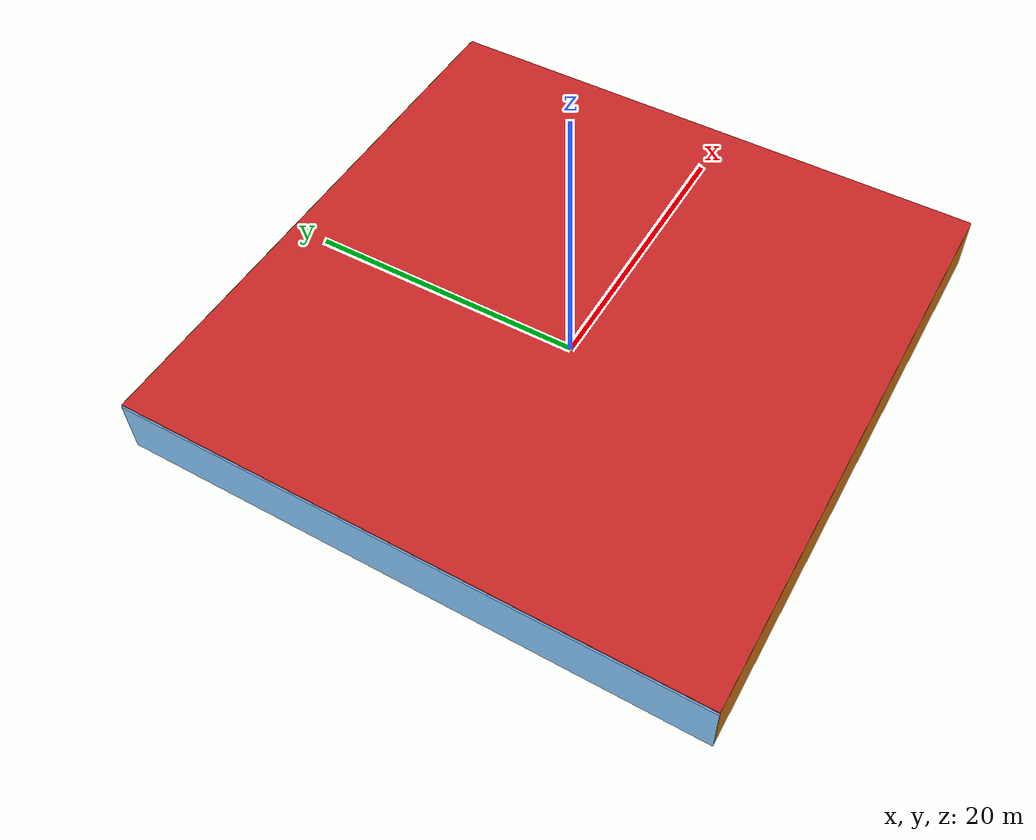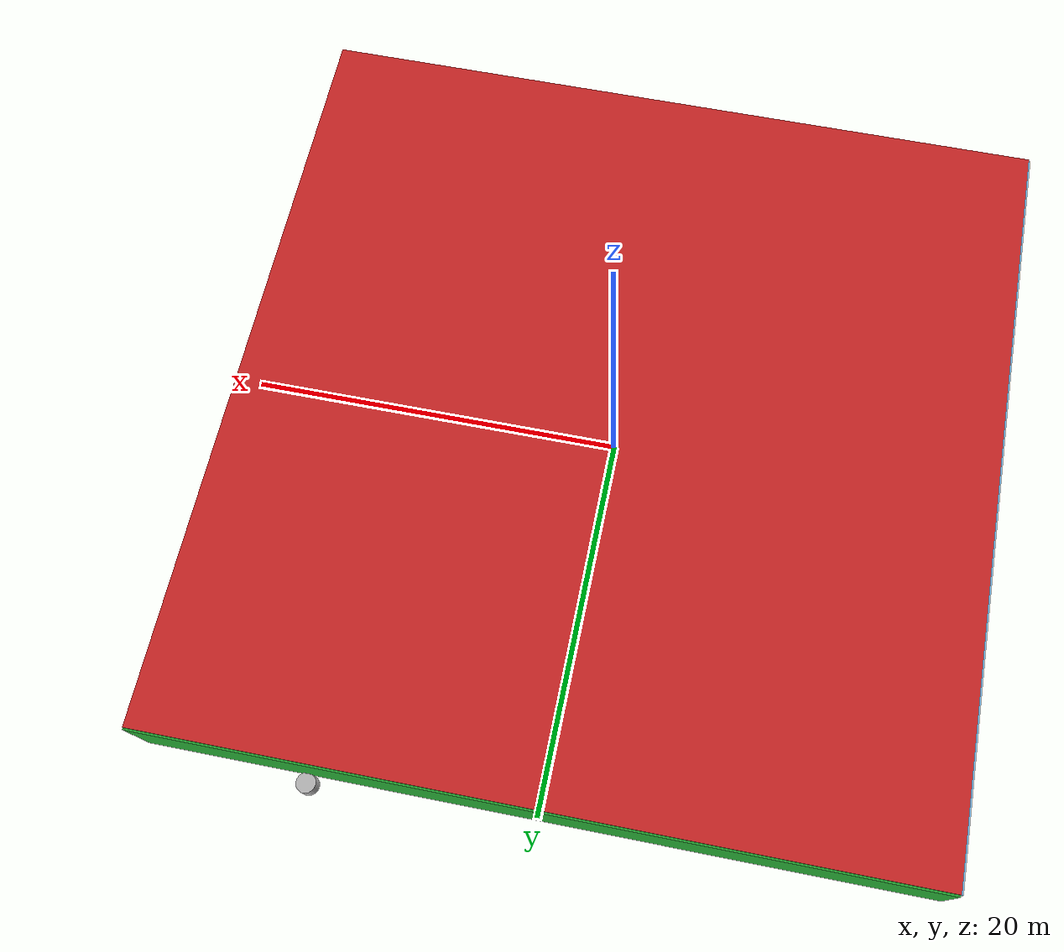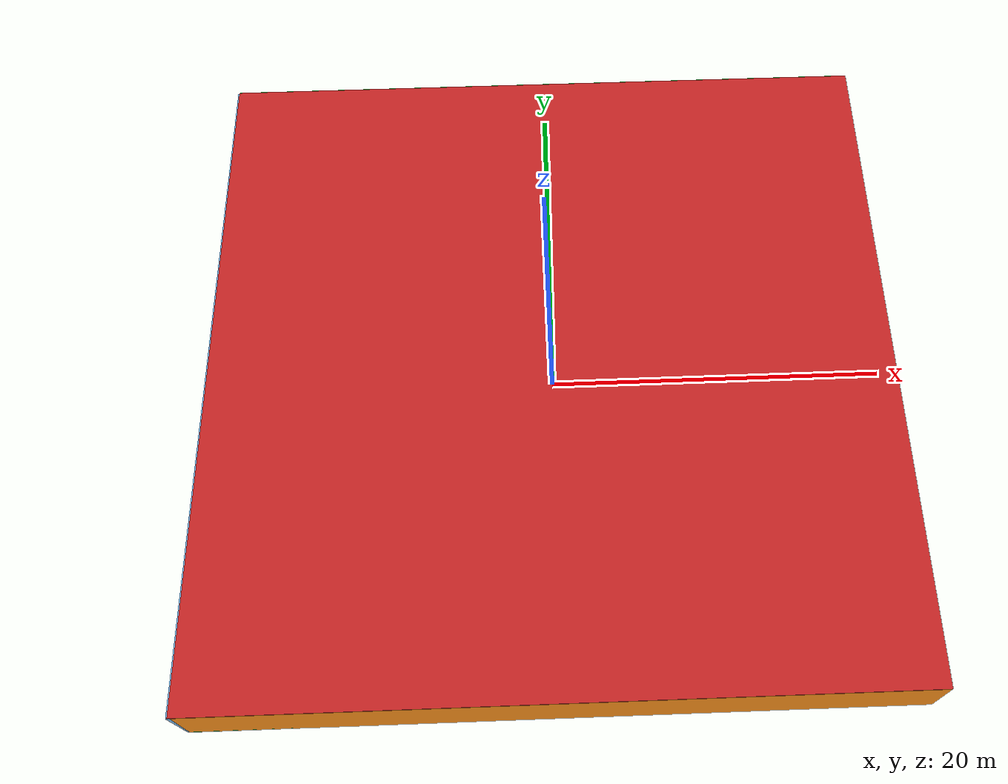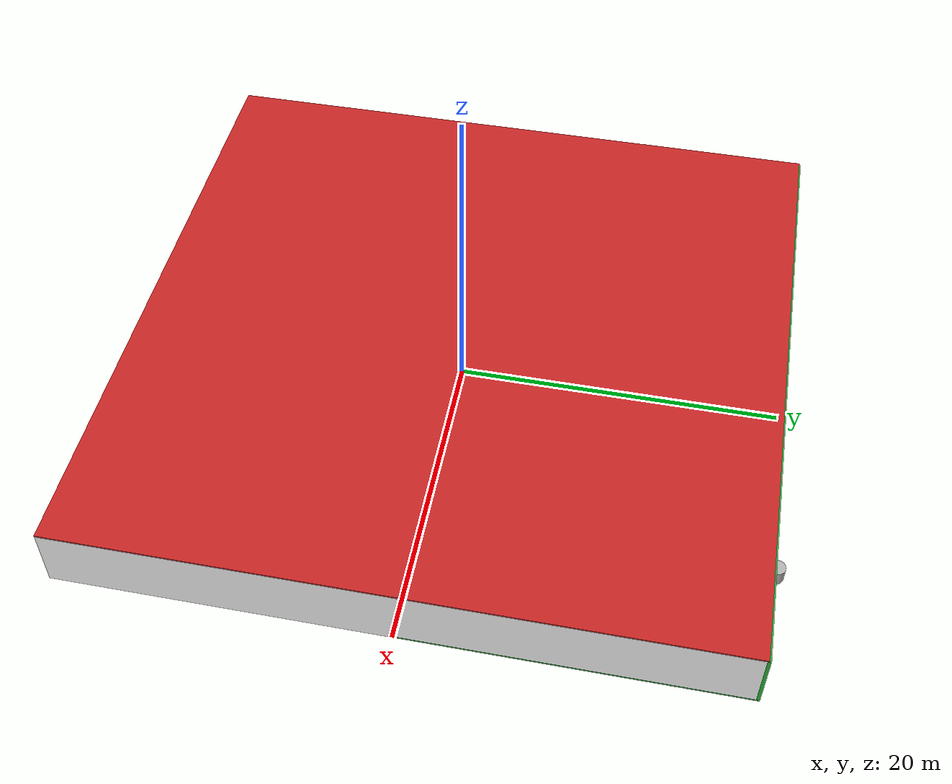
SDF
<sdf version="1.4">
 <world name="default">
  <physics type="ode">
   <max_step_size>0.001</max_step_size>
   <real_time_factor>1</real_time_factor>
   <real_time_update_rate>1000</real_time_update_rate>
   <gravity>0 0 -9.8</gravity>
  </physics>
  <scene><ambient>0.4 0.4 0.4 1</ambient><background>0.7 0.7 0.7 1</background><shadows>1</shadows></scene>
  <model name="Surrounding">
   <static>1</static>
   <link name="Ceiling">
    <collision name="Ceiling_Collision"><geometry><box><size>40 40 0.1</size></box></geometry></collision>
    <visual name="Ceiling_Visual">
     <geometry><box><size>40 40 0.1</size></box></geometry>
     <material>
      <script><uri>file://media/materials/scripts/gazebo.material</uri><name>Gazebo/Red</name></script>
     </material>
    </visual>
    <pose>0 0 4.05 0 0 0</pose>
   </link>
   <link name="Wall_South">
    <collision name="Wall_South_Collision">
     <geometry><box><size>40 0 4</size></box></geometry>
     <pose>0 0 2 0 -0 0</pose>
    </collision>
    <visual name="Wall_South_Visual">
     <pose>0 0 2 0 -0 0</pose>
     <geometry><box><size>40 0 4</size></box></geometry>
     <material>
      <script><uri>file://media/materials/scripts/gazebo.material</uri><name>Gazebo/Orange</name></script>
     </material>
    </visual>
    <velocity_decay><linear>0</linear><angular>0</angular></velocity_decay>
    <pose>0 -20 0 0 -0 0</pose>
   </link>
   <link name="Wall_East">
    <collision name="Wall_21_Collision">
     <geometry><box><size>40 0 4</size></box></geometry>
     <pose>0 0 2 0 -0 0</pose>
    </collision>
    <visual name="Wall_21_Visual">
     <pose>0 0 2 0 -0 0</pose>
     <geometry><box><size>40 0 4</size></box></geometry>
     <material>
      <script><uri>file://media/materials/scripts/gazebo.material</uri><name>Gazebo/WhiteGlow</name></script>
     </material>
    </visual>
    <velocity_decay><linear>0</linear><angular>0</angular></velocity_decay>
    <pose>20 0 0 0 -0 1.5708</pose>
   </link>
   <link name="Wall_North">
    <collision name="Wall_22_Collision">
     <geometry><box><size>40 0.2 4</size></box></geometry>
     <pose>0 0 2 0 -0 0</pose>
    </collision>
    <visual name="Wall_22_Visual">
     <pose>0 0 2 0 -0 0</pose>
     <geometry><box><size>40 0.2 4</size></box></geometry>
     <material>
      <script><uri>file://media/materials/scripts/gazebo.material</uri><name>Gazebo/Green</name></script>
     </material>
    </visual>
    <velocity_decay><linear>0</linear><angular>0</angular></velocity_decay>
    <pose>0 20 0 0 -0 0</pose>
   </link>
   <link name="Wall_West">
    <collision name="Wall_23_Collision">
     <geometry><box><size>40 0.2 4</size></box></geometry>
     <pose>0 0 2 0 -0 0</pose>
    </collision>
    <visual name="Wall_23_Visual">
     <pose>0 0 2 0 -0 0</pose>
     <geometry><box><size>40 0.2 4</size></box></geometry>
     <material>
      <script><uri>file://media/materials/scripts/gazebo.material</uri><name>Gazebo/SkyBlue</name></script>
     </material>
    </visual>
    <velocity_decay><linear>0</linear><angular>0</angular></velocity_decay>
    <pose>-20 0 0 0 0 -1.5708</pose>
   </link>
   <link name="Ground_link">
    <collision name="collision">
     <pose>0 0 .05 0 -0 0</pose>
     <geometry><box><size>40 40 0.1</size></box></geometry>
    </collision>
    <visual name="visual">
     <pose>0 0 .05 0 -0 0</pose>
     <geometry><box><size>40 40 0.1</size></box></geometry>
     <material>
      <script><uri>file://media/materials/scripts/gazebo.material</uri><name>Gazebo/GreenGlow</name></script>
     </material>
    </visual>
   </link>
   <static>1</static>
  </model>
  <spherical_coordinates>
   <surface_model>EARTH_WGS84</surface_model>
   <latitude_deg>0</latitude_deg>
   <longitude_deg>0</longitude_deg>
   <elevation>0</elevation>
   <heading_deg>0</heading_deg>
  </spherical_coordinates>
  <light name="lightball_0" type="diffuse">
   <diffuse>0.8 0.8 0.8 1</diffuse>
   <specular>0.2 0.2 0.2 1</specular>
   <attenuation>
    <range>100</range>
    <constant>0.7</constant>
    <linear>0.01</linear>
    <quadratic>0.001</quadratic>
   </attenuation>
   <direction>-0.5 0.1 -0.9</direction>
   <pose>15.8445740441 -16.8108702388 0.799932190752 0 0 0</pose>
  </light>
  <light name="lightball_1" type="diffuse">
   <diffuse>0.8 0.8 0.8 1</diffuse>
   <specular>0.2 0.2 0.2 1</specular>
   <attenuation>
    <range>100</range>
    <constant>0.7</constant>
    <linear>0.01</linear>
    <quadratic>0.001</quadratic>
   </attenuation>
   <direction>-0.5 0.1 -0.9</direction>
   <pose>-14.2816082957 12.8857533592 3.03494836962 0 0 0</pose>
  </light>
  <light name="lightball_2" type="diffuse">
   <diffuse>0.8 0.8 0.8 1</diffuse>
   <specular>0.2 0.2 0.2 1</specular>
   <attenuation>
    <range>100</range>
    <constant>0.7</constant>
    <linear>0.01</linear>
    <quadratic>0.001</quadratic>
   </attenuation>
   <direction>-0.5 0.1 -0.9</direction>
   <pose>-19.6909143911 -0.851412006732 1.63238901312 0 0 0</pose>
  </light>
  <light name="lightball_3" type="diffuse">
   <diffuse>0.8 0.8 0.8 1</diffuse>
   <specular>0.2 0.2 0.2 1</specular>
   <attenuation>
    <range>100</range>
    <constant>0.7</constant>
    <linear>0.01</linear>
    <quadratic>0.001</quadratic>
   </attenuation>
   <direction>-0.5 0.1 -0.9</direction>
   <pose>5.44216969191 -14.469623521 3.48731616282 0 0 0</pose>
  </light>
  <include>
   <uri>model://robocup_3Dsim_goal</uri>
   <pose>-17.3325570854 11.6415153802 0 0 0 1.00861037238</pose>
  </include>
  <include>
   <uri>model://construction_cone</uri>
   <pose>-18.131587155 15.2360270231 0 0 0 2.60025195228</pose>
  </include>
  <include><uri>model://table</uri><pose>-14.2596498142 6.65747300597 0 0 0 0.113973323067</pose></include>
  <include>
   <uri>model://construction_cone</uri>
   <pose>-13.6169401064 10.100194119 0 0 0 1.43096412221</pose>
  </include>
  <include><uri>model://cabinet</uri><pose>-12.6335953294 3.16108704713 0 0 0 0.837704378308</pose></include>
  <include><uri>model://table</uri><pose>-7.75225505342 3.14528139092 0 0 0 1.40012537532</pose></include>
  <include>
   <uri>model://construction_cone</uri>
   <pose>-5.15570653871 -17.2064107361 0 0 0 0.782463673205</pose>
  </include>
  <include><uri>model://cabinet</uri><pose>-5.40888882943 -11.4006119106 0 0 0 0.503026910972</pose></include>
  <include>
   <uri>model://robocup_3Dsim_goal</uri>
   <pose>-5.65496655566 16.4465101333 0 0 0 2.2155328221</pose>
  </include>
  <include>
   <uri>model://construction_cone</uri>
   <pose>-1.90190181862 8.73382549386 0 0 0 1.29092660147</pose>
  </include>
  <include>
   <uri>model://robocup_3Dsim_goal</uri>
   <pose>-0.061539690564 7.29596150841 0 0 0 1.89362915706</pose>
  </include>
  <include><uri>model://table</uri><pose>3.35683036229 5.3876002491 0 0 0 2.87854969459</pose></include>
  <include>
   <uri>model://textured_shapes</uri>
   <pose>6.67465239691 -11.0875987526 0 0 0 1.55251039025</pose>
  </include>
  <include>
   <uri>model://textured_shapes</uri>
   <pose>5.51074466707 3.10884065236 0 0 0 0.726066411557</pose>
  </include>
  <include><uri>model://cabinet</uri><pose>7.17715281321 6.92756867444 0 0 0 2.13708500923</pose></include>
  <include><uri>model://table</uri><pose>8.37577188678 3.90390967645 0 0 0 1.03613303607</pose></include>
  <include>
   <uri>model://textured_shapes</uri>
   <pose>13.2592828042 0.598607593038 0 0 0 1.50739023453</pose>
  </include>
  <include><uri>model://cabinet</uri><pose>13.6664501459 12.8639937674 0 0 0 0.921034603643</pose></include>
  <include>
   <uri>model://textured_shapes</uri>
   <pose>12.0731441081 19.1363123012 0 0 0 0.330304585898</pose>
  </include>
  <include><uri>model://table</uri><pose>15.9982329876 5.85811357239 0 0 0 0.840563518653</pose></include>
  <include><uri>model://cabinet</uri><pose>14.4366465085 17.4585040912 0 0 0 1.23358131805</pose></include>
  <include><uri>model://cabinet</uri><pose>19.1085668732 -11.9100183844 0 0 0 3.06512591444</pose></include>
  <include><uri>model://table</uri><pose>18.9557283363 3.69576265679 0 0 0 1.83723252414</pose></include>
 </world>
</sdf>

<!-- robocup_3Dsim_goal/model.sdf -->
<sdf version="1.5">
  <model name="robocup_3d_goal">
    <static>true</static>
    <link name="left_post">
      <pose>0 1.05 0.45 0 0 0</pose>
      <collision name="collision">
        <geometry>
          <cylinder>
            <radius>0.05</radius>
            <length>0.9</length>
          </cylinder>
        </geometry>
      </collision>
      <visual name="visual">
        <geometry>
          <cylinder>
            <radius>0.05</radius>
            <length>0.9</length>
          </cylinder>
        </geometry>
        <material>
          <script>
            <uri>file://media/materials/scripts/gazebo.material</uri>
            <name>Gazebo/ZincYellow</name>
          </script>
        </material>
      </visual>
    </link>
    <link name="left_support_horiz_lower">
      <pose>0.30 1.05 0.01 0 0 0</pose>
      <collision name="collision">
        <geometry>
          <box>
            <size>0.50 0.02 0.02</size>
          </box>
        </geometry>
      </collision>
      <visual name="visual">
        <geometry>
          <box>
            <size>0.50 0.02 0.02</size>
          </box>
        </geometry>
        <material>
          <script>
            <uri>file://media/materials/scripts/gazebo.material</uri>
            <name>Gazebo/White</name>
          </script>
        </material>
      </visual>
    </link>
    <link name="left_support_horiz_upper">
      <pose>0.30 1.05 0.79 0 0 0</pose>
      <collision name="collision">
        <geometry>
          <box>
            <size>0.50 0.02 0.02</size>
          </box>
        </geometry>
      </collision>
      <visual name="visual">
        <geometry>
          <box>
            <size>0.50 0.02 0.02</size>
          </box>
        </geometry>
        <material>
          <script>
            <uri>file://media/materials/scripts/gazebo.material</uri>
            <name>Gazebo/White</name>
          </script>
        </material>
      </visual>
    </link>
    <link name="left_support_vertical">
      <pose>0.56 1.05 0.4 0 1.5708 0</pose>
      <collision name="collision">
        <geometry>
          <box>
            <size>0.80 0.02 0.02</size>
          </box>
        </geometry>
      </collision>
      <visual name="visual">
        <geometry>
          <box>
            <size>0.80 0.02 0.02</size>
          </box>
        </geometry>
        <material>
          <script>
            <uri>file://media/materials/scripts/gazebo.material</uri>
            <name>Gazebo/White</name>
          </script>
        </material>
      </visual>
    </link>
    <link name="right_support_horiz_lower">
      <pose>0.30 -1.05 0.01 0 0 0</pose>
      <collision name="collision">
        <geometry>
          <box>
            <size>0.50 0.02 0.02</size>
          </box>
        </geometry>
      </collision>
      <visual name="visual">
        <geometry>
          <box>
            <size>0.50 0.02 0.02</size>
          </box>
        </geometry>
        <material>
          <script>
            <uri>file://media/materials/scripts/gazebo.material</uri>
            <name>Gazebo/White</name>
          </script>
        </material>
      </visual>
    </link>
    <link name="right_support_horiz_upper">
      <pose>0.30 -1.05 0.79 0 0 0</pose>
      <collision name="collision">
        <geometry>
          <box>
            <size>0.50 0.02 0.02</size>
          </box>
        </geometry>
      </collision>
      <visual name="visual">
        <geometry>
          <box>
            <size>0.50 0.02 0.02</size>
          </box>
        </geometry>
        <material>
          <script>
            <uri>file://media/materials/scripts/gazebo.material</uri>
            <name>Gazebo/White</name>
          </script>
        </material>
      </visual>
    </link>
    <link name="right_support_vertical">
      <pose>0.56 -1.05 0.4 0 1.5708 0</pose>
      <collision name="collision">
        <geometry>
          <box>
            <size>0.80 0.02 0.02</size>
          </box>
        </geometry>
      </collision>
      <visual name="visual">
        <geometry>
          <box>
            <size>0.80 0.02 0.02</size>
          </box>
        </geometry>
        <material>
          <script>
            <uri>file://media/materials/scripts/gazebo.material</uri>
            <name>Gazebo/White</name>
          </script>
        </material>
      </visual>
    </link>
    <link name="center_support_horiz_lower">
      <pose>0.56 0 0.01 0 1.5708 0</pose>
      <collision name="collision">
        <geometry>
          <box>
            <size>0.02 2.08 0.02</size>
          </box>
        </geometry>
      </collision>
      <visual name="visual">
        <geometry>
          <box>
            <size>0.02 2.08 0.02</size>
          </box>
        </geometry>
        <material>
          <script>
            <uri>file://media/materials/scripts/gazebo.material</uri>
            <name>Gazebo/White</name>
          </script>
        </material>
      </visual>
    </link>
    <link name="center_support_horiz_upper">
      <pose>0.56 0 0.79 0 1.5708 0</pose>
      <collision name="collision">
        <geometry>
          <box>
            <size>0.02 2.08 0.02</size>
          </box>
        </geometry>
      </collision>
      <visual name="visual">
        <geometry>
          <box>
            <size>0.02 2.08 0.02</size>
          </box>
        </geometry>
        <material>
          <script>
            <uri>file://media/materials/scripts/gazebo.material</uri>
            <name>Gazebo/White</name>
          </script>
        </material>
      </visual>
    </link>
    <link name="right_post">
      <pose>0 -1.05 0.45 0 0 0</pose>
      <collision name="collision">
        <geometry>
          <cylinder>
            <radius>0.05</radius>
            <length>0.9</length>
          </cylinder>
        </geometry>
      </collision>
      <visual name="visual">
        <geometry>
          <cylinder>
            <radius>0.05</radius>
            <length>0.9</length>
          </cylinder>
        </geometry>
        <material>
          <script>
            <uri>file://media/materials/scripts/gazebo.material</uri>
            <name>Gazebo/ZincYellow</name>
          </script>
        </material>
      </visual>
    </link>
    <link name="crossbar">
      <pose>0 0 0.85 1.57 1.57 0</pose>
      <collision name="collision">
        <geometry>
          <cylinder>
            <radius>0.05</radius>
            <length>2.0</length>
          </cylinder>
        </geometry>
      </collision>
      <visual name="visual">
        <geometry>
          <cylinder>
            <radius>0.05</radius>
            <length>2.0</length>
          </cylinder>
        </geometry>
        <material>
          <script>
            <uri>file://media/materials/scripts/gazebo.material</uri>
            <name>Gazebo/ZincYellow</name>
          </script>
        </material>
      </visual>
    </link>
    <link name="center_net">
      <pose>0.56 0 0.40 0 0 0</pose>
      <collision name="collision">
        <geometry>
          <box>
            <size>0.01 2.1 0.80</size>
          </box>
        </geometry>
      </collision>
      <visual name="visual">
        <geometry>
          <box>
            <size>0.01 2.1 0.80</size>
          </box>
        </geometry>
        <material>
          <script>
            <uri>model://../model_source/models/robocup09_spl_field/materials/scripts/</uri>
            <uri>model://../model_source/models/robocup09_spl_field/materials/textures/</uri>
            <name>RoboCup/Net</name>
          </script>
        </material>
      </visual>
    </link>
    <link name="left_net">
      <pose>0.30 1.05 0.40 0 0 0</pose>
      <collision name="collision">
        <geometry>
          <box>
            <size>0.50 0.01 0.76</size>
          </box>
        </geometry>
      </collision>
      <visual name="visual">
        <geometry>
          <box>
            <size>0.50 0.01 0.76</size>
          </box>
        </geometry>
        <material>
          <script>
            <uri>model://../model_source/models/robocup09_spl_field/materials/scripts/</uri>
            <uri>model://../model_source/models/robocup09_spl_field/materials/textures/</uri>
            <name>RoboCup/Net</name>
          </script>
        </material>
      </visual>
    </link>
    <link name="right_net">
      <pose>0.30 -1.05 0.40 0 0 0</pose>
      <collision name="collision">
        <geometry>
          <box>
            <size>0.50 0.01 0.76</size>
          </box>
        </geometry>
      </collision>
      <visual name="visual">
        <geometry>
          <box>
            <size>0.50 0.01 0.76</size>
          </box>
        </geometry>
        <material>
          <script>
            <uri>model://../model_source/models/robocup09_spl_field/materials/scripts/</uri>
            <uri>model://../model_source/models/robocup09_spl_field/materials/textures/</uri>
            <name>RoboCup/Net</name>
          </script>
        </material>
      </visual>
    </link>
  </model>
</sdf>

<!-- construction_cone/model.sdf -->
<sdf version="1.5">
  <model name="Construction Cone">
    <link name="link">
      <collision name="collision">
        <geometry>
          <mesh>
            <scale>10 10 10</scale>
            <uri>file://isr-testbed/construction_cone/meshes/construction_cone.dae</uri>
          </mesh>
        </geometry>
      </collision>
      <visual name="visual">
        <geometry>
          <mesh>
            <scale>10 10 10</scale>
            <uri>file://isr-testbed/construction_cone/meshes/construction_cone.dae</uri>
          </mesh>
        </geometry>
      </visual>
    </link>
  </model>
</sdf>

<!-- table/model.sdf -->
<sdf version="1.5">
  <model name="table">
    <static>true</static>
    <link name="link">
      <collision name="surface">
        <pose>0 0 1.0 0 0 0</pose>
        <geometry>
          <box>
            <size>1.5 0.8 0.03</size>
          </box>
        </geometry>
        <surface>
          <friction>
            <ode>
              <mu>0.6</mu>
              <mu2>0.6</mu2>
            </ode>
          </friction>
        </surface>
      </collision>
      <visual name="visual1">
        <pose>0 0 1.0 0 0 0</pose>
        <geometry>
          <box>
            <size>1.5 0.8 0.03</size>
          </box>
        </geometry>
        <material>
          <script>
            <uri>model://media/materials/scripts/gazebo.material</uri>
            <name>Gazebo/Wood</name>
          </script>
        </material>
      </visual>
      <collision name="front_left_leg">
        <pose>0.68 0.38 0.5 0 0 0</pose>
        <geometry>
          <cylinder>
            <radius>0.02</radius>
            <length>1.0</length>
          </cylinder>
        </geometry>
      </collision>
      <visual name="front_left_leg">
        <pose>0.68 0.38 0.5 0 0 0</pose>
        <geometry>
          <cylinder>
            <radius>0.02</radius>
            <length>1.0</length>
          </cylinder>
        </geometry>
        <material>
          <script>
            <uri>model://media/materials/scripts/gazebo.material</uri>
            <name>Gazebo/Grey</name>
          </script>
        </material>
      </visual>
      <collision name="front_right_leg">
        <pose>0.68 -0.38 0.5 0 0 0</pose>
        <geometry>
          <cylinder>
            <radius>0.02</radius>
            <length>1.0</length>
          </cylinder>
        </geometry>
      </collision>
      <visual name="front_right_leg">
        <pose>0.68 -0.38 0.5 0 0 0</pose>
        <geometry>
          <cylinder>
            <radius>0.02</radius>
            <length>1.0</length>
          </cylinder>
        </geometry>
        <material>
          <script>
            <uri>model://media/materials/scripts/gazebo.material</uri>
            <name>Gazebo/Grey</name>
          </script>
        </material>
      </visual>
      <collision name="back_right_leg">
        <pose>-0.68 -0.38 0.5 0 0 0</pose>
        <geometry>
          <cylinder>
            <radius>0.02</radius>
            <length>1.0</length>
          </cylinder>
        </geometry>
      </collision>
      <visual name="back_right_leg">
        <pose>-0.68 -0.38 0.5 0 0 0</pose>
        <geometry>
          <cylinder>
            <radius>0.02</radius>
            <length>1.0</length>
          </cylinder>
        </geometry>
        <material>
          <script>
            <uri>model://media/materials/scripts/gazebo.material</uri>
            <name>Gazebo/Grey</name>
          </script>
        </material>
      </visual>
      <collision name="back_left_leg">
        <pose>-0.68 0.38 0.5 0 0 0</pose>
        <geometry>
          <cylinder>
            <radius>0.02</radius>
            <length>1.0</length>
          </cylinder>
        </geometry>
      </collision>
      <visual name="back_left_leg">
        <pose>-0.68 0.38 0.5 0 0 0</pose>
        <geometry>
          <cylinder>
            <radius>0.02</radius>
            <length>1.0</length>
          </cylinder>
        </geometry>
        <material>
          <script>
            <uri>model://media/materials/scripts/gazebo.material</uri>
            <name>Gazebo/Grey</name>
          </script>
        </material>
      </visual>
    </link>
  </model>
</sdf>

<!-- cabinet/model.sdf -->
<sdf version="1.5">
  <model name="cabinet">
    <static>true</static>
    <link name="cabinet_bottom_plate">
      <inertial>
        <pose>0 0 -1 0 0 0</pose>
        <inertia>
          <ixx>2.050000</ixx>
          <ixy>0</ixy>
          <ixz>0</ixz>
          <iyy>2.050000</iyy>
          <iyz>0</iyz>
          <izz>2.050000</izz>
        </inertia>
        <mass>25.000000</mass>
      </inertial>
      <collision name="cabinet_bottom_plate_geom">
        <pose>0 0 0.010000 0 0 0</pose>
        <geometry>
          <box>
            <size>0.450000 0.450000 0.020000</size>
          </box>
        </geometry>
      </collision>
      <visual name="cabinet_bottom_plate_geom_visual">
        <pose>0 0 0.010000 0 0 0</pose>
        <geometry>
          <box>
            <size>0.450000 0.450000 0.020000</size>
          </box>
        </geometry>
        <material>
          <script>
            <uri>model://media/materials/scripts/gazebo.material</uri>
            <name>Gazebo/Wood</name>
          </script>
        </material>
      </visual>
      <collision name="cabinet_bottom_plate_geom_cabinet_back_plate">
        <pose>0.235000 0 0.510000 0 0 0</pose>
        <geometry>
          <box>
            <size>0.020000 0.450000 1.020000</size>
          </box>
        </geometry>
      </collision>
      <visual name="cabinet_bottom_plate_geom_cabinet_back_plate_visual">
        <pose>0.235000 0 0.510000 0 0 0</pose>
        <geometry>
          <box>
            <size>0.020000 0.450000 1.020000</size>
          </box>
        </geometry>
        <material>
          <script>
            <uri>model://media/materials/scripts/gazebo.material</uri>
            <name>Gazebo/Wood</name>
          </script>
        </material>
      </visual>
      <collision name="cabinet_bottom_plate_geom_cabinet_left_plate">
        <pose>0 0.235000 0.510000 0 0 0</pose>
        <geometry>
          <box>
            <size>0.450000 0.020000 1.020000</size>
          </box>
        </geometry>
      </collision>
      <visual name="cabinet_bottom_plate_geom_cabinet_left_plate_visual">
        <pose>0 0.235000 0.510000 0 0 0</pose>
        <geometry>
          <box>
            <size>0.450000 0.020000 1.020000</size>
          </box>
        </geometry>
        <material>
          <script>
            <uri>model://media/materials/scripts/gazebo.material</uri>
            <name>Gazebo/Wood</name>
          </script>
        </material>
      </visual>
      <collision name="cabinet_bottom_plate_geom_cabinet_middle_plate">
        <pose>0 0 0.510000 0 0 0</pose>
        <geometry>
          <box>
            <size>0.450000 0.450000 0.020000</size>
          </box>
        </geometry>
      </collision>
      <visual name="cabinet_bottom_plate_geom_cabinet_middle_plate_visual">
        <pose>0 0 0.510000 0 0 0</pose>
        <geometry>
          <box>
            <size>0.450000 0.450000 0.020000</size>
          </box>
        </geometry>
        <material>
          <script>
            <uri>model://media/materials/scripts/gazebo.material</uri>
            <name>Gazebo/Wood</name>
          </script>
        </material>
      </visual>
      <collision name="cabinet_bottom_plate_geom_cabinet_right_plate">
        <pose>0 -0.235000 0.510000 0 0 0</pose>
        <geometry>
          <box>
            <size>0.450000 0.020000 1.020000</size>
          </box>
        </geometry>
      </collision>
      <visual name="cabinet_bottom_plate_geom_cabinet_right_plate_visual">
        <pose>0 -0.235000 0.510000 0 0 0</pose>
        <geometry>
          <box>
            <size>0.450000 0.020000 1.020000</size>
          </box>
        </geometry>
        <material>
          <script>
            <uri>model://media/materials/scripts/gazebo.material</uri>
            <name>Gazebo/Wood</name>
          </script>
        </material>
      </visual>
      <collision name="cabinet_bottom_plate_geom_cabinet_top_plate">
        <pose>0 0 1.010000 0 0 0</pose>
        <geometry>
          <box>
            <size>0.450000 0.450000 0.020000</size>
          </box>
        </geometry>
      </collision>
      <visual name="cabinet_bottom_plate_geom_cabinet_top_plate_visual">
        <pose>0 0 1.010000 0 0 0</pose>
        <geometry>
          <box>
            <size>0.450000 0.450000 0.020000</size>
          </box>
        </geometry>
        <material>
          <script>
            <uri>model://media/materials/scripts/gazebo.material</uri>
            <name>Gazebo/Wood</name>
          </script>
        </material>
      </visual>
    </link>
  </model>
</sdf>

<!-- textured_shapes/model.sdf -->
<sdf version="1.6">
  <model name="textured_shapes">
    <pose>0 0 0.5 0 0 0</pose>
    <link name="box">
      <pose>0 -1.5 0 0 0 0</pose>
      <collision name="collision">
        <geometry>
          <box>
            <size>1 1 1</size>
          </box>
        </geometry>
      </collision>
      <visual name="visual">
        <geometry>
          <box>
            <size>1 1 1</size>
          </box>
        </geometry>
        <material>
          <script>
            <uri>model://../model_source/models/textured_shapes/materials/scripts</uri>
            <uri>model://../model_source/models/textured_shapes/materials/textures</uri>
            <name>TexturedShape/Squares</name>
          </script>
        </material>
      </visual>
    </link>
    <link name="sphere">
      <collision name="collision">
        <geometry>
          <sphere>
            <radius>0.5</radius>
          </sphere>
        </geometry>
      </collision>
      <visual name="visual">
        <geometry>
          <sphere>
            <radius>0.5</radius>
          </sphere>
        </geometry>
        <material>
          <script>
            <uri>model://../model_source/models/textured_shapes/materials/scripts</uri>
            <uri>model://../model_source/models/textured_shapes/materials/textures</uri>
            <name>TexturedShape/Squares</name>
          </script>
        </material>
      </visual>
    </link>
    <link name="cylinder">
      <pose>0 1.5 0 0 0 0</pose>
      <collision name="collision">
        <geometry>
          <cylinder>
            <radius>0.5</radius>
            <length>1</length>
          </cylinder>
        </geometry>
      </collision>
      <visual name="visual">
        <geometry>
          <cylinder>
            <radius>0.5</radius>
            <length>1</length>
          </cylinder>
        </geometry>
        <material>
          <script>
            <uri>model://../model_source/models/textured_shapes/materials/scripts</uri>
            <uri>model://../model_source/models/textured_shapes/materials/textures</uri>
            <name>TexturedShape/Squares</name>
          </script>
        </material>
      </visual>
    </link>
  </model>
</sdf>
